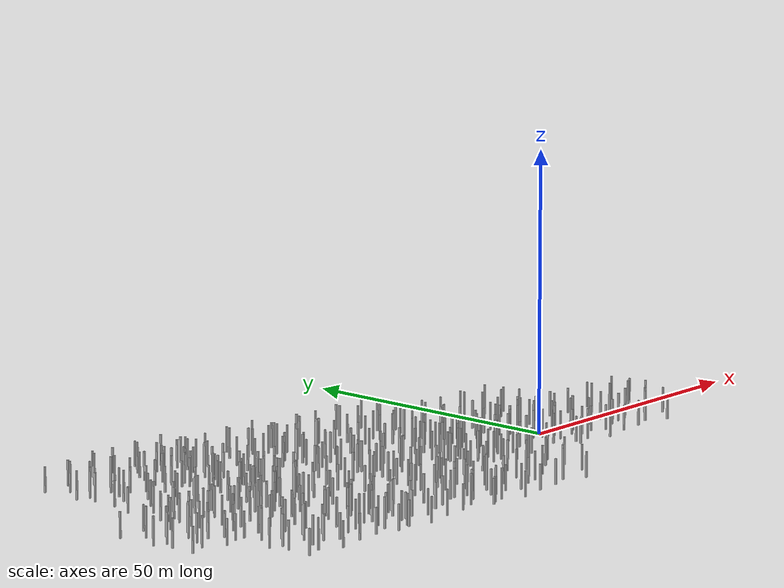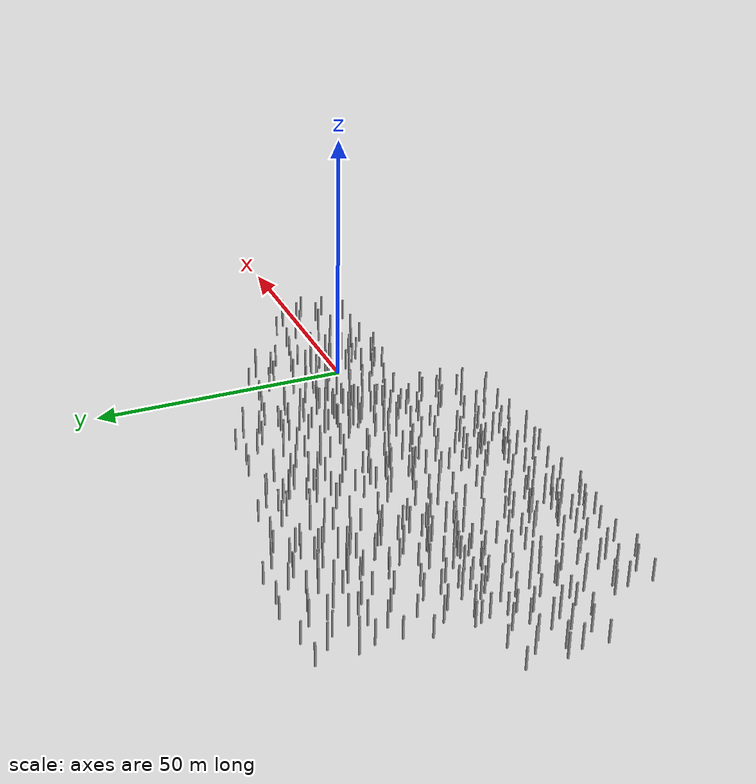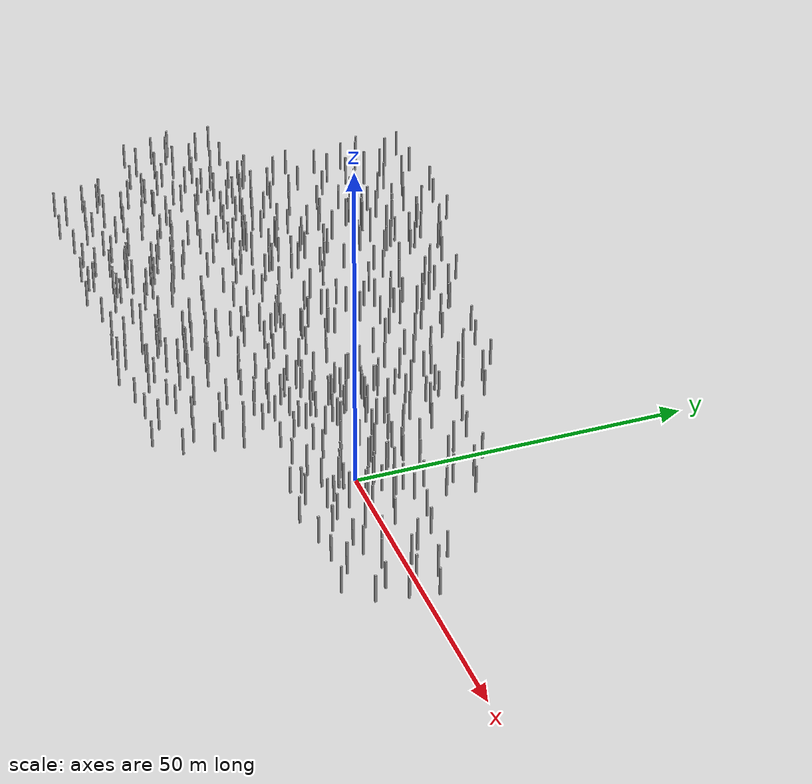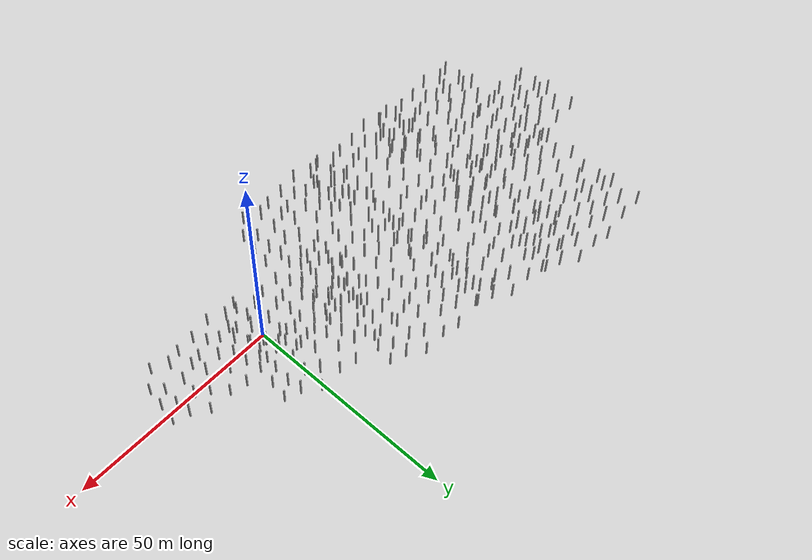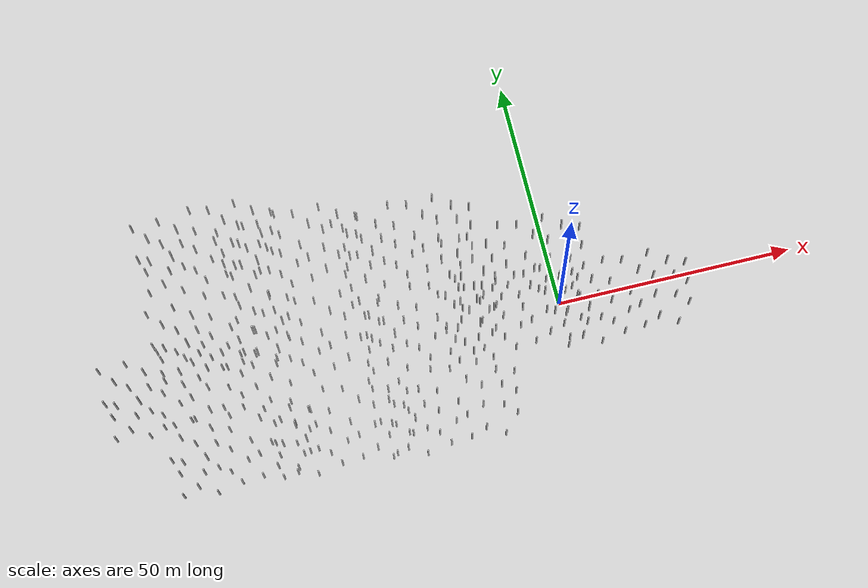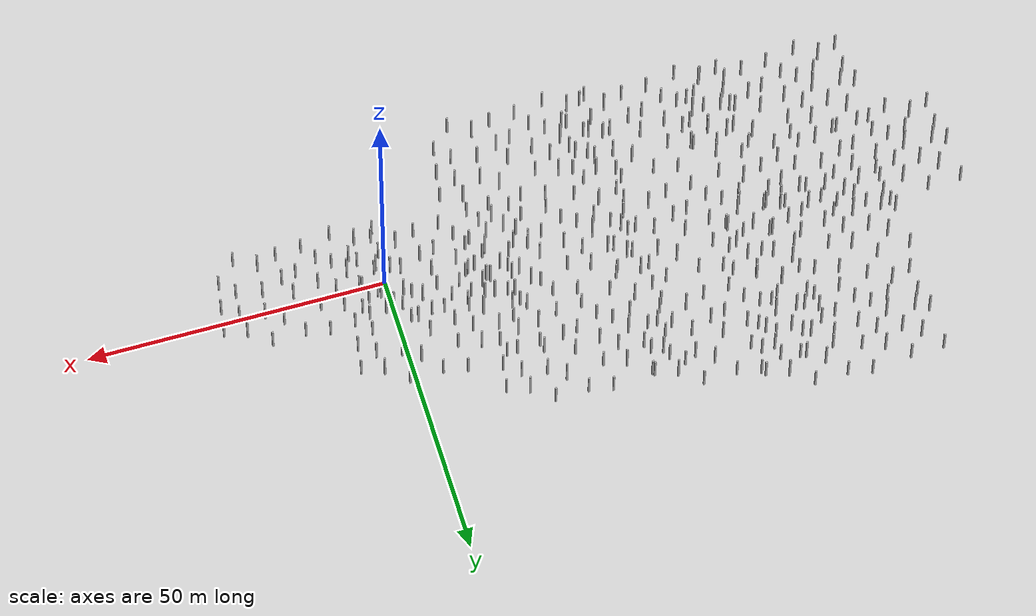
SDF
<sdf version="1.6">
 <world name="world">
  <model name="ground_plane">
   <static>1</static>
   <link name="link">
    <collision name="collision">
     <geometry><plane><normal>0 0 1</normal><size>100 100</size></plane></geometry>
     <surface><friction><ode><mu>100</mu><mu2>50</mu2></ode></friction></surface>
    </collision>
    <velocity_decay><linear>0</linear><angular>0</angular></velocity_decay>
   </link>
  </model>
  <model name="pillars">
   <pose>-3.82158 -2.82314 0 0 -0 0</pose>
   <static>1</static>
   <link name="body">
    <visual name="visual">
     <pose>0 0 -0.001 0 -0 0</pose>
     <geometry><mesh><uri>model://pillars/pillars4.dae</uri><scale>1 1 1</scale></mesh></geometry>
    </visual>
    <collision name="pillars">
     <pose>0 0 -0.001 0 -0 0</pose>
     <geometry><mesh><uri>model://pillars/pillars4.dae</uri><scale>1 1 1</scale></mesh></geometry>
    </collision>
    <velocity_decay><linear>0</linear><angular>0</angular></velocity_decay>
   </link>
  </model>
  <physics name="default_physics" default="0" type="ode">
   <max_step_size>0.001</max_step_size>
   <real_time_factor>1</real_time_factor>
   <real_time_update_rate>1000</real_time_update_rate>
  </physics>
  <scene><ambient>0.4 0.4 0.4 1</ambient><background>0.7 0.7 0.7 1</background><shadows>1</shadows></scene>
  <spherical_coordinates>
   <surface_model>EARTH_WGS84</surface_model>
   <latitude_deg>0</latitude_deg>
   <longitude_deg>0</longitude_deg>
   <elevation>0</elevation>
   <heading_deg>0</heading_deg>
  </spherical_coordinates>
  <gravity>0 0 -9.8</gravity>
  <magnetic_field>6e-06 2.3e-05 -4.2e-05</magnetic_field>
  <atmosphere type="adiabatic"/>
  <light name="user_point_light_0" type="point">
   <pose>7.28336 -5.6677 1 0 -0 0</pose>
   <diffuse>0.5 0.5 0.5 1</diffuse>
   <specular>0.1 0.1 0.1 1</specular>
   <attenuation>
    <range>20</range>
    <constant>0.5</constant>
    <linear>0.01</linear>
    <quadratic>0.001</quadratic>
   </attenuation>
   <cast_shadows>0</cast_shadows>
   <direction>0 0 -1</direction>
  </light>
  <light name="user_point_light_0_clone" type="point">
   <pose>22.1998 -4.89933 8 0 -0 0</pose>
   <diffuse>0.498039 0.498039 0.498039 1</diffuse>
   <specular>0.0980392 0.0980392 0.0980392 1</specular>
   <direction>0 0 -1</direction>
   <attenuation>
    <range>20</range>
    <constant>0.5</constant>
    <linear>0.01</linear>
    <quadratic>0.001</quadratic>
   </attenuation>
  </light>
  <light name="user_point_light_0_clone_0" type="point">
   <pose>26.1259 -10.288 8 0 -0 0</pose>
   <diffuse>0.498039 0.498039 0.498039 1</diffuse>
   <specular>0.0980392 0.0980392 0.0980392 1</specular>
   <direction>0 0 -1</direction>
   <attenuation>
    <range>20</range>
    <constant>0.5</constant>
    <linear>0.01</linear>
    <quadratic>0.001</quadratic>
   </attenuation>
  </light>
  <model name="pillars_clone">
   <static>1</static>
   <link name="body">
    <visual name="visual">
     <pose>0 0 -0.001 0 -0 0</pose>
     <geometry><mesh><uri>model://pillars/pillars4.dae</uri><scale>1 1 1</scale></mesh></geometry>
    </visual>
    <collision name="pillars">
     <pose>0 0 -0.001 0 -0 0</pose>
     <geometry><mesh><uri>model://pillars/pillars4.dae</uri><scale>1 1 1</scale></mesh></geometry>
    </collision>
    <velocity_decay><linear>0</linear><angular>0</angular></velocity_decay>
   </link>
   <pose>-26.6025 -0.750058 0 0 -0 0</pose>
  </model>
  <model name="pillars_clone_clone">
   <static>1</static>
   <link name="body">
    <visual name="visual">
     <pose>0 0 -0.001 0 -0 0</pose>
     <geometry><mesh><uri>model://pillars/pillars4.dae</uri><scale>1 1 1</scale></mesh></geometry>
    </visual>
    <collision name="pillars">
     <pose>0 0 -0.001 0 -0 0</pose>
     <geometry><mesh><uri>model://pillars/pillars4.dae</uri><scale>1 1 1</scale></mesh></geometry>
    </collision>
    <velocity_decay><linear>0</linear><angular>0</angular></velocity_decay>
   </link>
   <pose>-23.3055 10.0033 0 0 -0 0</pose>
  </model>
  <model name="pillars_clone_clone_0">
   <static>1</static>
   <link name="body">
    <visual name="visual">
     <pose>0 0 -0.001 0 -0 0</pose>
     <geometry><mesh><uri>model://pillars/pillars4.dae</uri><scale>1 1 1</scale></mesh></geometry>
    </visual>
    <collision name="pillars">
     <pose>0 0 -0.001 0 -0 0</pose>
     <geometry><mesh><uri>model://pillars/pillars4.dae</uri><scale>1 1 1</scale></mesh></geometry>
    </collision>
    <velocity_decay><linear>0</linear><angular>0</angular></velocity_decay>
   </link>
   <pose>-44.3999 -17.2538 0 0 -0 0</pose>
  </model>
  <model name="pillars_clone_clone_1">
   <static>1</static>
   <link name="body">
    <visual name="visual">
     <pose>0 0 -0.001 0 -0 0</pose>
     <geometry><mesh><uri>model://pillars/pillars4.dae</uri><scale>1 1 1</scale></mesh></geometry>
    </visual>
    <collision name="pillars">
     <pose>0 0 -0.001 0 -0 0</pose>
     <geometry><mesh><uri>model://pillars/pillars4.dae</uri><scale>1 1 1</scale></mesh></geometry>
    </collision>
    <velocity_decay><linear>0</linear><angular>0</angular></velocity_decay>
   </link>
   <pose>-44.3975 1.23126 0 0 -0 0</pose>
  </model>
  <model name="pillars_clone_clone_2">
   <static>1</static>
   <link name="body">
    <visual name="visual">
     <pose>0 0 -0.001 0 -0 0</pose>
     <geometry><mesh><uri>model://pillars/pillars4.dae</uri><scale>1 1 1</scale></mesh></geometry>
    </visual>
    <collision name="pillars">
     <pose>0 0 -0.001 0 -0 0</pose>
     <geometry><mesh><uri>model://pillars/pillars4.dae</uri><scale>1 1 1</scale></mesh></geometry>
    </collision>
    <velocity_decay><linear>0</linear><angular>0</angular></velocity_decay>
   </link>
   <pose>-44.8905 19.9084 0 0 -0 0</pose>
  </model>
  <model name="pillars_clone_clone_3">
   <static>1</static>
   <link name="body">
    <visual name="visual">
     <pose>0 0 -0.001 0 -0 0</pose>
     <geometry><mesh><uri>model://pillars/pillars4.dae</uri><scale>1 1 1</scale></mesh></geometry>
    </visual>
    <collision name="pillars">
     <pose>0 0 -0.001 0 -0 0</pose>
     <geometry><mesh><uri>model://pillars/pillars4.dae</uri><scale>1 1 1</scale></mesh></geometry>
    </collision>
    <velocity_decay><linear>0</linear><angular>0</angular></velocity_decay>
   </link>
   <pose>-66.8202 -16.0658 0 0 -0 0</pose>
  </model>
  <model name="pillars_clone_clone_4">
   <static>1</static>
   <link name="body">
    <visual name="visual">
     <pose>0 0 -0.001 0 -0 0</pose>
     <geometry><mesh><uri>model://pillars/pillars4.dae</uri><scale>1 1 1</scale></mesh></geometry>
    </visual>
    <collision name="pillars">
     <pose>0 0 -0.001 0 -0 0</pose>
     <geometry><mesh><uri>model://pillars/pillars4.dae</uri><scale>1 1 1</scale></mesh></geometry>
    </collision>
    <velocity_decay><linear>0</linear><angular>0</angular></velocity_decay>
   </link>
   <pose>-68.4408 3.81185 0 0 -0 0</pose>
  </model>
  <model name="pillars_clone_clone_5">
   <static>1</static>
   <link name="body">
    <visual name="visual">
     <pose>0 0 -0.001 0 -0 0</pose>
     <geometry><mesh><uri>model://pillars/pillars4.dae</uri><scale>1 1 1</scale></mesh></geometry>
    </visual>
    <collision name="pillars">
     <pose>0 0 -0.001 0 -0 0</pose>
     <geometry><mesh><uri>model://pillars/pillars4.dae</uri><scale>1 1 1</scale></mesh></geometry>
    </collision>
    <velocity_decay><linear>0</linear><angular>0</angular></velocity_decay>
   </link>
   <pose>-68.7644 23.6895 0 0 -0 0</pose>
  </model>
  <model name="pillars_clone_clone_6">
   <static>1</static>
   <link name="body">
    <visual name="visual">
     <pose>0 0 -0.001 0 -0 0</pose>
     <geometry><mesh><uri>model://pillars/pillars4.dae</uri><scale>1 1 1</scale></mesh></geometry>
    </visual>
    <collision name="pillars">
     <pose>0 0 -0.001 0 -0 0</pose>
     <geometry><mesh><uri>model://pillars/pillars4.dae</uri><scale>1 1 1</scale></mesh></geometry>
    </collision>
    <velocity_decay><linear>0</linear><angular>0</angular></velocity_decay>
   </link>
   <pose>-87.2257 -15.0363 0 0 -0 0</pose>
  </model>
  <model name="pillars_clone_clone_7">
   <static>1</static>
   <link name="body">
    <visual name="visual">
     <pose>0 0 -0.001 0 -0 0</pose>
     <geometry><mesh><uri>model://pillars/pillars4.dae</uri><scale>1 1 1</scale></mesh></geometry>
    </visual>
    <collision name="pillars">
     <pose>0 0 -0.001 0 -0 0</pose>
     <geometry><mesh><uri>model://pillars/pillars4.dae</uri><scale>1 1 1</scale></mesh></geometry>
    </collision>
    <velocity_decay><linear>0</linear><angular>0</angular></velocity_decay>
   </link>
   <pose>-86.4539 9.43529 0 0 -0 0</pose>
  </model>
  <model name="pillars_clone_clone_8">
   <static>1</static>
   <link name="body">
    <visual name="visual">
     <pose>0 0 -0.001 0 -0 0</pose>
     <geometry><mesh><uri>model://pillars/pillars4.dae</uri><scale>1 1 1</scale></mesh></geometry>
    </visual>
    <collision name="pillars">
     <pose>0 0 -0.001 0 -0 0</pose>
     <geometry><mesh><uri>model://pillars/pillars4.dae</uri><scale>1 1 1</scale></mesh></geometry>
    </collision>
    <velocity_decay><linear>0</linear><angular>0</angular></velocity_decay>
   </link>
   <pose>-85.99 28.7942 0 0 -0 0</pose>
  </model>
  <model name="pillars_clone_clone_9">
   <static>1</static>
   <link name="body">
    <visual name="visual">
     <pose>0 0 -0.001 0 -0 0</pose>
     <geometry><mesh><uri>model://pillars/pillars4.dae</uri><scale>1 1 1</scale></mesh></geometry>
    </visual>
    <collision name="pillars">
     <pose>0 0 -0.001 0 -0 0</pose>
     <geometry><mesh><uri>model://pillars/pillars4.dae</uri><scale>1 1 1</scale></mesh></geometry>
    </collision>
    <velocity_decay><linear>0</linear><angular>0</angular></velocity_decay>
   </link>
   <pose>-98.3604 -0.247198 0 0 -0 0</pose>
  </model>
 </world>
</sdf>
